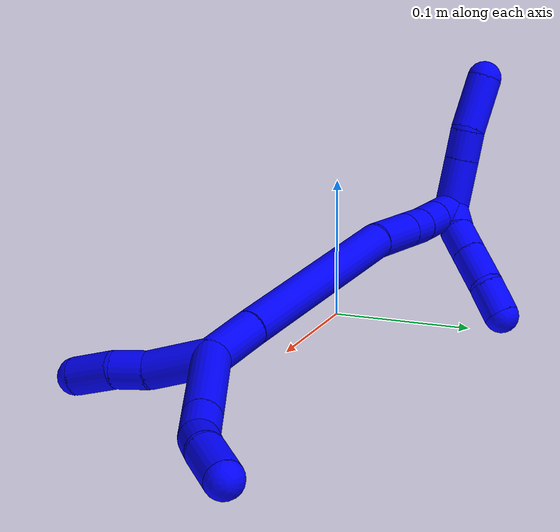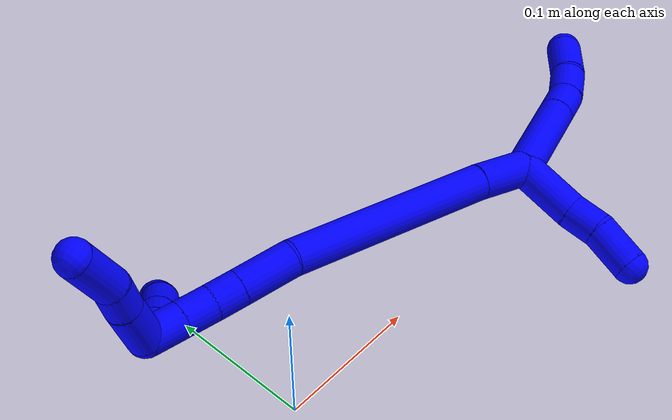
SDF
<sdf version="1.7">
 <world name="default">
  <model name="1">
   <static>0</static>
   <link name="1">
    <collision name="collision-cylinder-e_1_2_8">
     <pose>0.003365 0.011829 0.033653 -0.338014 0.094055 -0.016061</pose>
     <geometry><cylinder><radius>0.0125</radius><length>0.071661</length></cylinder></geometry>
     <surface>
      <friction><ode><mu>1.16</mu><mu2>1.16</mu2><slip1>0</slip1><slip2>0</slip2></ode></friction>
      <contact><ode><kp>1e+06</kp><kd>1</kd><max_vel>0</max_vel><min_depth>0.001</min_depth></ode></contact>
     </surface>
    </collision>
    <visual name="visual-cylinder-e_1_2_8">
     <pose>0.003365 0.011829 0.033653 -0.338014 0.094055 -0.016061</pose>
     <geometry><cylinder><radius>0.0125</radius><length>0.071661</length></cylinder></geometry>
     <material><ambient>0 0 1 1</ambient></material>
    </visual>
    <collision name="collision-cylinder-e_2_8_9">
     <pose>0.007819 0.027612 0.07856 -0.33788 0.091065 -0.015543</pose>
     <geometry><cylinder><radius>0.0125</radius><length>0.023954</length></cylinder></geometry>
     <surface>
      <friction><ode><mu>1.16</mu><mu2>1.16</mu2><slip1>0</slip1><slip2>0</slip2></ode></friction>
      <contact><ode><kp>1e+06</kp><kd>1</kd><max_vel>0</max_vel><min_depth>0.001</min_depth></ode></contact>
     </surface>
    </collision>
    <visual name="visual-cylinder-e_2_8_9">
     <pose>0.007819 0.027612 0.07856 -0.33788 0.091065 -0.015543</pose>
     <geometry><cylinder><radius>0.0125</radius><length>0.023954</length></cylinder></geometry>
     <material><ambient>0 0 1 1</ambient></material>
    </visual>
    <collision name="collision-cylinder-e_3_9_10">
     <pose>0.006326 0.03483 0.099982 -0.310576 -0.237222 0.037307</pose>
     <geometry><cylinder><radius>0.0125</radius><length>0.021975</length></cylinder></geometry>
     <surface>
      <friction><ode><mu>1.16</mu><mu2>1.16</mu2><slip1>0</slip1><slip2>0</slip2></ode></friction>
      <contact><ode><kp>1e+06</kp><kd>1</kd><max_vel>0</max_vel><min_depth>0.001</min_depth></ode></contact>
     </surface>
    </collision>
    <visual name="visual-cylinder-e_3_9_10">
     <pose>0.006326 0.03483 0.099982 -0.310576 -0.237222 0.037307</pose>
     <geometry><cylinder><radius>0.0125</radius><length>0.021975</length></cylinder></geometry>
     <material><ambient>0 0 1 1</ambient></material>
    </visual>
    <collision name="collision-cylinder-e_4_10_6">
     <pose>-0.00022 0.0464 0.123489 -0.55698 -0.247157 0.070999</pose>
     <geometry><cylinder><radius>0.0125</radius><length>0.03241</length></cylinder></geometry>
     <surface>
      <friction><ode><mu>1.16</mu><mu2>1.16</mu2><slip1>0</slip1><slip2>0</slip2></ode></friction>
      <contact><ode><kp>1e+06</kp><kd>1</kd><max_vel>0</max_vel><min_depth>0.001</min_depth></ode></contact>
     </surface>
    </collision>
    <visual name="visual-cylinder-e_4_10_6">
     <pose>-0.00022 0.0464 0.123489 -0.55698 -0.247157 0.070999</pose>
     <geometry><cylinder><radius>0.0125</radius><length>0.03241</length></cylinder></geometry>
     <material><ambient>0 0 1 1</ambient></material>
    </visual>
    <collision name="collision-cylinder-e_1_2_11">
     <pose>0.020463 -0.007019 -0.005024 2.19204 1.1716 1.82338</pose>
     <geometry><cylinder><radius>0.0125</radius><length>0.044418</length></cylinder></geometry>
     <surface>
      <friction><ode><mu>1.16</mu><mu2>1.16</mu2><slip1>0</slip1><slip2>0</slip2></ode></friction>
      <contact><ode><kp>1e+06</kp><kd>1</kd><max_vel>0</max_vel><min_depth>0.001</min_depth></ode></contact>
     </surface>
    </collision>
    <visual name="visual-cylinder-e_1_2_11">
     <pose>0.020463 -0.007019 -0.005024 2.19204 1.1716 1.82338</pose>
     <geometry><cylinder><radius>0.0125</radius><length>0.044418</length></cylinder></geometry>
     <material><ambient>0 0 1 1</ambient></material>
    </visual>
    <collision name="collision-cylinder-e_2_11_12">
     <pose>0.050826 -0.02006 -0.012391 1.94177 0.992629 1.33932</pose>
     <geometry><cylinder><radius>0.0125</radius><length>0.023645</length></cylinder></geometry>
     <surface>
      <friction><ode><mu>1.16</mu><mu2>1.16</mu2><slip1>0</slip1><slip2>0</slip2></ode></friction>
      <contact><ode><kp>1e+06</kp><kd>1</kd><max_vel>0</max_vel><min_depth>0.001</min_depth></ode></contact>
     </surface>
    </collision>
    <visual name="visual-cylinder-e_2_11_12">
     <pose>0.050826 -0.02006 -0.012391 1.94177 0.992629 1.33932</pose>
     <geometry><cylinder><radius>0.0125</radius><length>0.023645</length></cylinder></geometry>
     <material><ambient>0 0 1 1</ambient></material>
    </visual>
    <collision name="collision-cylinder-e_3_12_5">
     <pose>0.074709 -0.031135 -0.02056 2.42712 1.06668 2.01409</pose>
     <geometry><cylinder><radius>0.0125</radius><length>0.031938</length></cylinder></geometry>
     <surface>
      <friction><ode><mu>1.16</mu><mu2>1.16</mu2><slip1>0</slip1><slip2>0</slip2></ode></friction>
      <contact><ode><kp>1e+06</kp><kd>1</kd><max_vel>0</max_vel><min_depth>0.001</min_depth></ode></contact>
     </surface>
    </collision>
    <visual name="visual-cylinder-e_3_12_5">
     <pose>0.074709 -0.031135 -0.02056 2.42712 1.06668 2.01409</pose>
     <geometry><cylinder><radius>0.0125</radius><length>0.031938</length></cylinder></geometry>
     <material><ambient>0 0 1 1</ambient></material>
    </visual>
    <collision name="collision-cylinder-e_1_2_13">
     <pose>-0.011257 -0.000228 -0.016506 3.12779 -0.598518 -3.09687</pose>
     <geometry><cylinder><radius>0.0125</radius><length>0.039961</length></cylinder></geometry>
     <surface>
      <friction><ode><mu>1.16</mu><mu2>1.16</mu2><slip1>0</slip1><slip2>0</slip2></ode></friction>
      <contact><ode><kp>1e+06</kp><kd>1</kd><max_vel>0</max_vel><min_depth>0.001</min_depth></ode></contact>
     </surface>
    </collision>
    <visual name="visual-cylinder-e_1_2_13">
     <pose>-0.011257 -0.000228 -0.016506 3.12779 -0.598518 -3.09687</pose>
     <geometry><cylinder><radius>0.0125</radius><length>0.039961</length></cylinder></geometry>
     <material><ambient>0 0 1 1</ambient></material>
    </visual>
    <collision name="collision-cylinder-e_2_13_14">
     <pose>-0.061002 0.000345 -0.098603 -3.12939 -0.530601 3.09667</pose>
     <geometry><cylinder><radius>0.0125</radius><length>0.152107</length></cylinder></geometry>
     <surface>
      <friction><ode><mu>1.16</mu><mu2>1.16</mu2><slip1>0</slip1><slip2>0</slip2></ode></friction>
      <contact><ode><kp>1e+06</kp><kd>1</kd><max_vel>0</max_vel><min_depth>0.001</min_depth></ode></contact>
     </surface>
    </collision>
    <visual name="visual-cylinder-e_2_13_14">
     <pose>-0.061002 0.000345 -0.098603 -3.12939 -0.530601 3.09667</pose>
     <geometry><cylinder><radius>0.0125</radius><length>0.152107</length></cylinder></geometry>
     <material><ambient>0 0 1 1</ambient></material>
    </visual>
    <collision name="collision-cylinder-e_3_14_15">
     <pose>-0.107397 0.004405 -0.182123 -2.96179 -0.409466 2.32243</pose>
     <geometry><cylinder><radius>0.0125</radius><length>0.039729</length></cylinder></geometry>
     <surface>
      <friction><ode><mu>1.16</mu><mu2>1.16</mu2><slip1>0</slip1><slip2>0</slip2></ode></friction>
      <contact><ode><kp>1e+06</kp><kd>1</kd><max_vel>0</max_vel><min_depth>0.001</min_depth></ode></contact>
     </surface>
    </collision>
    <visual name="visual-cylinder-e_3_14_15">
     <pose>-0.107397 0.004405 -0.182123 -2.96179 -0.409466 2.32243</pose>
     <geometry><cylinder><radius>0.0125</radius><length>0.039729</length></cylinder></geometry>
     <material><ambient>0 0 1 1</ambient></material>
    </visual>
    <collision name="collision-cylinder-e_4_15_16">
     <pose>-0.119459 0.009373 -0.209297 -2.95879 -0.415932 2.32206</pose>
     <geometry><cylinder><radius>0.0125</radius><length>0.020557</length></cylinder></geometry>
     <surface>
      <friction><ode><mu>1.16</mu><mu2>1.16</mu2><slip1>0</slip1><slip2>0</slip2></ode></friction>
      <contact><ode><kp>1e+06</kp><kd>1</kd><max_vel>0</max_vel><min_depth>0.001</min_depth></ode></contact>
     </surface>
    </collision>
    <visual name="visual-cylinder-e_4_15_16">
     <pose>-0.119459 0.009373 -0.209297 -2.95879 -0.415932 2.32206</pose>
     <geometry><cylinder><radius>0.0125</radius><length>0.020557</length></cylinder></geometry>
     <material><ambient>0 0 1 1</ambient></material>
    </visual>
    <collision name="collision-cylinder-e_5_16_17">
     <pose>-0.128344 0.012133 -0.228705 -3.03851 -0.433825 2.68173</pose>
     <geometry><cylinder><radius>0.0125</radius><length>0.022518</length></cylinder></geometry>
     <surface>
      <friction><ode><mu>1.16</mu><mu2>1.16</mu2><slip1>0</slip1><slip2>0</slip2></ode></friction>
      <contact><ode><kp>1e+06</kp><kd>1</kd><max_vel>0</max_vel><min_depth>0.001</min_depth></ode></contact>
     </surface>
    </collision>
    <visual name="visual-cylinder-e_5_16_17">
     <pose>-0.128344 0.012133 -0.228705 -3.03851 -0.433825 2.68173</pose>
     <geometry><cylinder><radius>0.0125</radius><length>0.022518</length></cylinder></geometry>
     <material><ambient>0 0 1 1</ambient></material>
    </visual>
    <collision name="collision-cylinder-e_6_17_1">
     <pose>-0.138408 0.014227 -0.250196 -3.04982 -0.438218 2.73486</pose>
     <geometry><cylinder><radius>0.0125</radius><length>0.025127</length></cylinder></geometry>
     <surface>
      <friction><ode><mu>1.16</mu><mu2>1.16</mu2><slip1>0</slip1><slip2>0</slip2></ode></friction>
      <contact><ode><kp>1e+06</kp><kd>1</kd><max_vel>0</max_vel><min_depth>0.001</min_depth></ode></contact>
     </surface>
    </collision>
    <visual name="visual-cylinder-e_6_17_1">
     <pose>-0.138408 0.014227 -0.250196 -3.04982 -0.438218 2.73486</pose>
     <geometry><cylinder><radius>0.0125</radius><length>0.025127</length></cylinder></geometry>
     <material><ambient>0 0 1 1</ambient></material>
    </visual>
    <collision name="collision-cylinder-e_1_1_18">
     <pose>-0.156903 0.002189 -0.263067 1.68823 -0.785128 -0.871791</pose>
     <geometry><cylinder><radius>0.0125</radius><length>0.037243</length></cylinder></geometry>
     <surface>
      <friction><ode><mu>1.16</mu><mu2>1.16</mu2><slip1>0</slip1><slip2>0</slip2></ode></friction>
      <contact><ode><kp>1e+06</kp><kd>1</kd><max_vel>0</max_vel><min_depth>0.001</min_depth></ode></contact>
     </surface>
    </collision>
    <visual name="visual-cylinder-e_1_1_18">
     <pose>-0.156903 0.002189 -0.263067 1.68823 -0.785128 -0.871791</pose>
     <geometry><cylinder><radius>0.0125</radius><length>0.037243</length></cylinder></geometry>
     <material><ambient>0 0 1 1</ambient></material>
    </visual>
    <collision name="collision-cylinder-e_2_18_19">
     <pose>-0.177873 -0.018659 -0.264742 1.58774 -0.787768 -0.799851</pose>
     <geometry><cylinder><radius>0.0125</radius><length>0.022025</length></cylinder></geometry>
     <surface>
      <friction><ode><mu>1.16</mu><mu2>1.16</mu2><slip1>0</slip1><slip2>0</slip2></ode></friction>
      <contact><ode><kp>1e+06</kp><kd>1</kd><max_vel>0</max_vel><min_depth>0.001</min_depth></ode></contact>
     </surface>
    </collision>
    <visual name="visual-cylinder-e_2_18_19">
     <pose>-0.177873 -0.018659 -0.264742 1.58774 -0.787768 -0.799851</pose>
     <geometry><cylinder><radius>0.0125</radius><length>0.022025</length></cylinder></geometry>
     <material><ambient>0 0 1 1</ambient></material>
    </visual>
    <collision name="collision-cylinder-e_3_19_4">
     <pose>-0.200799 -0.039005 -0.270158 1.96851 -0.836702 -1.17925</pose>
     <geometry><cylinder><radius>0.0125</radius><length>0.040732</length></cylinder></geometry>
     <surface>
      <friction><ode><mu>1.16</mu><mu2>1.16</mu2><slip1>0</slip1><slip2>0</slip2></ode></friction>
      <contact><ode><kp>1e+06</kp><kd>1</kd><max_vel>0</max_vel><min_depth>0.001</min_depth></ode></contact>
     </surface>
    </collision>
    <visual name="visual-cylinder-e_3_19_4">
     <pose>-0.200799 -0.039005 -0.270158 1.96851 -0.836702 -1.17925</pose>
     <geometry><cylinder><radius>0.0125</radius><length>0.040732</length></cylinder></geometry>
     <material><ambient>0 0 1 1</ambient></material>
    </visual>
    <collision name="collision-cylinder-e_1_1_20">
     <pose>-0.142122 0.022889 -0.253479 -0.758218 0.144955 -0.057833</pose>
     <geometry><cylinder><radius>0.0125</radius><length>0.022397</length></cylinder></geometry>
     <surface>
      <friction><ode><mu>1.16</mu><mu2>1.16</mu2><slip1>0</slip1><slip2>0</slip2></ode></friction>
      <contact><ode><kp>1e+06</kp><kd>1</kd><max_vel>0</max_vel><min_depth>0.001</min_depth></ode></contact>
     </surface>
    </collision>
    <visual name="visual-cylinder-e_1_1_20">
     <pose>-0.142122 0.022889 -0.253479 -0.758218 0.144955 -0.057833</pose>
     <geometry><cylinder><radius>0.0125</radius><length>0.022397</length></cylinder></geometry>
     <material><ambient>0 0 1 1</ambient></material>
    </visual>
    <collision name="collision-cylinder-e_2_20_21">
     <pose>-0.140434 0.039611 -0.238547 -0.923122 0.006128 -0.003048</pose>
     <geometry><cylinder><radius>0.0125</radius><length>0.022829</length></cylinder></geometry>
     <surface>
      <friction><ode><mu>1.16</mu><mu2>1.16</mu2><slip1>0</slip1><slip2>0</slip2></ode></friction>
      <contact><ode><kp>1e+06</kp><kd>1</kd><max_vel>0</max_vel><min_depth>0.001</min_depth></ode></contact>
     </surface>
    </collision>
    <visual name="visual-cylinder-e_2_20_21">
     <pose>-0.140434 0.039611 -0.238547 -0.923122 0.006128 -0.003048</pose>
     <geometry><cylinder><radius>0.0125</radius><length>0.022829</length></cylinder></geometry>
     <material><ambient>0 0 1 1</ambient></material>
    </visual>
    <collision name="collision-cylinder-e_3_21_22">
     <pose>-0.140328 0.060628 -0.222751 -0.928718 0.002473 -0.001239</pose>
     <geometry><cylinder><radius>0.0125</radius><length>0.029754</length></cylinder></geometry>
     <surface>
      <friction><ode><mu>1.16</mu><mu2>1.16</mu2><slip1>0</slip1><slip2>0</slip2></ode></friction>
      <contact><ode><kp>1e+06</kp><kd>1</kd><max_vel>0</max_vel><min_depth>0.001</min_depth></ode></contact>
     </surface>
    </collision>
    <visual name="visual-cylinder-e_3_21_22">
     <pose>-0.140328 0.060628 -0.222751 -0.928718 0.002473 -0.001239</pose>
     <geometry><cylinder><radius>0.0125</radius><length>0.029754</length></cylinder></geometry>
     <material><ambient>0 0 1 1</ambient></material>
    </visual>
    <collision name="collision-cylinder-e_4_22_3">
     <pose>-0.139424 0.084162 -0.209288 -1.19727 0.069347 -0.047314</pose>
     <geometry><cylinder><radius>0.0125</radius><length>0.025021</length></cylinder></geometry>
     <surface>
      <friction><ode><mu>1.16</mu><mu2>1.16</mu2><slip1>0</slip1><slip2>0</slip2></ode></friction>
      <contact><ode><kp>1e+06</kp><kd>1</kd><max_vel>0</max_vel><min_depth>0.001</min_depth></ode></contact>
     </surface>
    </collision>
    <visual name="visual-cylinder-e_4_22_3">
     <pose>-0.139424 0.084162 -0.209288 -1.19727 0.069347 -0.047314</pose>
     <geometry><cylinder><radius>0.0125</radius><length>0.025021</length></cylinder></geometry>
     <material><ambient>0 0 1 1</ambient></material>
    </visual>
    <collision name="collision-sphere-3">
     <pose>-0.138557 0.095782 -0.204734 0 -0 0</pose>
     <geometry><sphere><radius>0.0125</radius></sphere></geometry>
     <surface>
      <friction><ode><mu>1.16</mu><mu2>1.16</mu2><slip1>0</slip1><slip2>0</slip2></ode></friction>
      <contact><ode><kp>1e+06</kp><kd>1</kd><max_vel>0</max_vel><min_depth>0.001</min_depth></ode></contact>
     </surface>
    </collision>
    <visual name="visual-sphere-3">
     <pose>-0.138557 0.095782 -0.204734 0 -0 0</pose>
     <geometry><sphere><radius>0.0125</radius></sphere></geometry>
     <material><ambient>0 0 1 1</ambient></material>
    </visual>
    <collision name="collision-sphere-22">
     <pose>-0.140291 0.072542 -0.213842 0 -0 0</pose>
     <geometry><sphere><radius>0.0125</radius></sphere></geometry>
     <surface>
      <friction><ode><mu>1.16</mu><mu2>1.16</mu2><slip1>0</slip1><slip2>0</slip2></ode></friction>
      <contact><ode><kp>1e+06</kp><kd>1</kd><max_vel>0</max_vel><min_depth>0.001</min_depth></ode></contact>
     </surface>
    </collision>
    <visual name="visual-sphere-22">
     <pose>-0.140291 0.072542 -0.213842 0 -0 0</pose>
     <geometry><sphere><radius>0.0125</radius></sphere></geometry>
     <material><ambient>0 0 1 1</ambient></material>
    </visual>
    <collision name="collision-sphere-21">
     <pose>-0.140364 0.048714 -0.23166 0 -0 0</pose>
     <geometry><sphere><radius>0.0125</radius></sphere></geometry>
     <surface>
      <friction><ode><mu>1.16</mu><mu2>1.16</mu2><slip1>0</slip1><slip2>0</slip2></ode></friction>
      <contact><ode><kp>1e+06</kp><kd>1</kd><max_vel>0</max_vel><min_depth>0.001</min_depth></ode></contact>
     </surface>
    </collision>
    <visual name="visual-sphere-21">
     <pose>-0.140364 0.048714 -0.23166 0 -0 0</pose>
     <geometry><sphere><radius>0.0125</radius></sphere></geometry>
     <material><ambient>0 0 1 1</ambient></material>
    </visual>
    <collision name="collision-sphere-20">
     <pose>-0.140504 0.030508 -0.245433 0 -0 0</pose>
     <geometry><sphere><radius>0.0125</radius></sphere></geometry>
     <surface>
      <friction><ode><mu>1.16</mu><mu2>1.16</mu2><slip1>0</slip1><slip2>0</slip2></ode></friction>
      <contact><ode><kp>1e+06</kp><kd>1</kd><max_vel>0</max_vel><min_depth>0.001</min_depth></ode></contact>
     </surface>
    </collision>
    <visual name="visual-sphere-20">
     <pose>-0.140504 0.030508 -0.245433 0 -0 0</pose>
     <geometry><sphere><radius>0.0125</radius></sphere></geometry>
     <material><ambient>0 0 1 1</ambient></material>
    </visual>
    <collision name="collision-sphere-4">
     <pose>-0.215919 -0.051583 -0.275442 0 -0 0</pose>
     <geometry><sphere><radius>0.0125</radius></sphere></geometry>
     <surface>
      <friction><ode><mu>1.16</mu><mu2>1.16</mu2><slip1>0</slip1><slip2>0</slip2></ode></friction>
      <contact><ode><kp>1e+06</kp><kd>1</kd><max_vel>0</max_vel><min_depth>0.001</min_depth></ode></contact>
     </surface>
    </collision>
    <visual name="visual-sphere-4">
     <pose>-0.215919 -0.051583 -0.275442 0 -0 0</pose>
     <geometry><sphere><radius>0.0125</radius></sphere></geometry>
     <material><ambient>0 0 1 1</ambient></material>
    </visual>
    <collision name="collision-sphere-11">
     <pose>0.040925 -0.014038 -0.010049 0 -0 0</pose>
     <geometry><sphere><radius>0.0125</radius></sphere></geometry>
     <surface>
      <friction><ode><mu>1.16</mu><mu2>1.16</mu2><slip1>0</slip1><slip2>0</slip2></ode></friction>
      <contact><ode><kp>1e+06</kp><kd>1</kd><max_vel>0</max_vel><min_depth>0.001</min_depth></ode></contact>
     </surface>
    </collision>
    <visual name="visual-sphere-11">
     <pose>0.040925 -0.014038 -0.010049 0 -0 0</pose>
     <geometry><sphere><radius>0.0125</radius></sphere></geometry>
     <material><ambient>0 0 1 1</ambient></material>
    </visual>
    <collision name="collision-sphere-6">
     <pose>-0.004185 0.054706 0.136826 0 -0 0</pose>
     <geometry><sphere><radius>0.0125</radius></sphere></geometry>
     <surface>
      <friction><ode><mu>1.16</mu><mu2>1.16</mu2><slip1>0</slip1><slip2>0</slip2></ode></friction>
      <contact><ode><kp>1e+06</kp><kd>1</kd><max_vel>0</max_vel><min_depth>0.001</min_depth></ode></contact>
     </surface>
    </collision>
    <visual name="visual-sphere-6">
     <pose>-0.004185 0.054706 0.136826 0 -0 0</pose>
     <geometry><sphere><radius>0.0125</radius></sphere></geometry>
     <material><ambient>0 0 1 1</ambient></material>
    </visual>
    <collision name="collision-sphere-10">
     <pose>0.003744 0.038094 0.110151 0 -0 0</pose>
     <geometry><sphere><radius>0.0125</radius></sphere></geometry>
     <surface>
      <friction><ode><mu>1.16</mu><mu2>1.16</mu2><slip1>0</slip1><slip2>0</slip2></ode></friction>
      <contact><ode><kp>1e+06</kp><kd>1</kd><max_vel>0</max_vel><min_depth>0.001</min_depth></ode></contact>
     </surface>
    </collision>
    <visual name="visual-sphere-10">
     <pose>0.003744 0.038094 0.110151 0 -0 0</pose>
     <geometry><sphere><radius>0.0125</radius></sphere></geometry>
     <material><ambient>0 0 1 1</ambient></material>
    </visual>
    <collision name="collision-sphere-9">
     <pose>0.008908 0.031566 0.089813 0 -0 0</pose>
     <geometry><sphere><radius>0.0125</radius></sphere></geometry>
     <surface>
      <friction><ode><mu>1.16</mu><mu2>1.16</mu2><slip1>0</slip1><slip2>0</slip2></ode></friction>
      <contact><ode><kp>1e+06</kp><kd>1</kd><max_vel>0</max_vel><min_depth>0.001</min_depth></ode></contact>
     </surface>
    </collision>
    <visual name="visual-sphere-9">
     <pose>0.008908 0.031566 0.089813 0 -0 0</pose>
     <geometry><sphere><radius>0.0125</radius></sphere></geometry>
     <material><ambient>0 0 1 1</ambient></material>
    </visual>
    <collision name="collision-sphere-2">
     <geometry><sphere><radius>0.0125</radius></sphere></geometry>
     <surface>
      <friction><ode><mu>1.16</mu><mu2>1.16</mu2><slip1>0</slip1><slip2>0</slip2></ode></friction>
      <contact><ode><kp>1e+06</kp><kd>1</kd><max_vel>0</max_vel><min_depth>0.001</min_depth></ode></contact>
     </surface>
    </collision>
    <visual name="visual-sphere-2">
     <geometry><sphere><radius>0.0125</radius></sphere></geometry>
     <material><ambient>0 0 1 1</ambient></material>
    </visual>
    <collision name="collision-sphere-19">
     <pose>-0.185678 -0.026426 -0.264874 0 -0 0</pose>
     <geometry><sphere><radius>0.0125</radius></sphere></geometry>
     <surface>
      <friction><ode><mu>1.16</mu><mu2>1.16</mu2><slip1>0</slip1><slip2>0</slip2></ode></friction>
      <contact><ode><kp>1e+06</kp><kd>1</kd><max_vel>0</max_vel><min_depth>0.001</min_depth></ode></contact>
     </surface>
    </collision>
    <visual name="visual-sphere-19">
     <pose>-0.185678 -0.026426 -0.264874 0 -0 0</pose>
     <geometry><sphere><radius>0.0125</radius></sphere></geometry>
     <material><ambient>0 0 1 1</ambient></material>
    </visual>
    <collision name="collision-sphere-8">
     <pose>0.00673 0.023659 0.067307 0 -0 0</pose>
     <geometry><sphere><radius>0.0125</radius></sphere></geometry>
     <surface>
      <friction><ode><mu>1.16</mu><mu2>1.16</mu2><slip1>0</slip1><slip2>0</slip2></ode></friction>
      <contact><ode><kp>1e+06</kp><kd>1</kd><max_vel>0</max_vel><min_depth>0.001</min_depth></ode></contact>
     </surface>
    </collision>
    <visual name="visual-sphere-8">
     <pose>0.00673 0.023659 0.067307 0 -0 0</pose>
     <geometry><sphere><radius>0.0125</radius></sphere></geometry>
     <material><ambient>0 0 1 1</ambient></material>
    </visual>
    <collision name="collision-sphere-12">
     <pose>0.060727 -0.026081 -0.014733 0 -0 0</pose>
     <geometry><sphere><radius>0.0125</radius></sphere></geometry>
     <surface>
      <friction><ode><mu>1.16</mu><mu2>1.16</mu2><slip1>0</slip1><slip2>0</slip2></ode></friction>
      <contact><ode><kp>1e+06</kp><kd>1</kd><max_vel>0</max_vel><min_depth>0.001</min_depth></ode></contact>
     </surface>
    </collision>
    <visual name="visual-sphere-12">
     <pose>0.060727 -0.026081 -0.014733 0 -0 0</pose>
     <geometry><sphere><radius>0.0125</radius></sphere></geometry>
     <material><ambient>0 0 1 1</ambient></material>
    </visual>
    <collision name="collision-sphere-5">
     <pose>0.088691 -0.036189 -0.026387 0 -0 0</pose>
     <geometry><sphere><radius>0.0125</radius></sphere></geometry>
     <surface>
      <friction><ode><mu>1.16</mu><mu2>1.16</mu2><slip1>0</slip1><slip2>0</slip2></ode></friction>
      <contact><ode><kp>1e+06</kp><kd>1</kd><max_vel>0</max_vel><min_depth>0.001</min_depth></ode></contact>
     </surface>
    </collision>
    <visual name="visual-sphere-5">
     <pose>0.088691 -0.036189 -0.026387 0 -0 0</pose>
     <geometry><sphere><radius>0.0125</radius></sphere></geometry>
     <material><ambient>0 0 1 1</ambient></material>
    </visual>
    <collision name="collision-sphere-13">
     <pose>-0.022515 -0.000456 -0.033012 0 -0 0</pose>
     <geometry><sphere><radius>0.0125</radius></sphere></geometry>
     <surface>
      <friction><ode><mu>1.16</mu><mu2>1.16</mu2><slip1>0</slip1><slip2>0</slip2></ode></friction>
      <contact><ode><kp>1e+06</kp><kd>1</kd><max_vel>0</max_vel><min_depth>0.001</min_depth></ode></contact>
     </surface>
    </collision>
    <visual name="visual-sphere-13">
     <pose>-0.022515 -0.000456 -0.033012 0 -0 0</pose>
     <geometry><sphere><radius>0.0125</radius></sphere></geometry>
     <material><ambient>0 0 1 1</ambient></material>
    </visual>
    <collision name="collision-sphere-14">
     <pose>-0.099489 0.001146 -0.164194 0 -0 0</pose>
     <geometry><sphere><radius>0.0125</radius></sphere></geometry>
     <surface>
      <friction><ode><mu>1.16</mu><mu2>1.16</mu2><slip1>0</slip1><slip2>0</slip2></ode></friction>
      <contact><ode><kp>1e+06</kp><kd>1</kd><max_vel>0</max_vel><min_depth>0.001</min_depth></ode></contact>
     </surface>
    </collision>
    <visual name="visual-sphere-14">
     <pose>-0.099489 0.001146 -0.164194 0 -0 0</pose>
     <geometry><sphere><radius>0.0125</radius></sphere></geometry>
     <material><ambient>0 0 1 1</ambient></material>
    </visual>
    <collision name="collision-sphere-15">
     <pose>-0.115306 0.007663 -0.200052 0 -0 0</pose>
     <geometry><sphere><radius>0.0125</radius></sphere></geometry>
     <surface>
      <friction><ode><mu>1.16</mu><mu2>1.16</mu2><slip1>0</slip1><slip2>0</slip2></ode></friction>
      <contact><ode><kp>1e+06</kp><kd>1</kd><max_vel>0</max_vel><min_depth>0.001</min_depth></ode></contact>
     </surface>
    </collision>
    <visual name="visual-sphere-15">
     <pose>-0.115306 0.007663 -0.200052 0 -0 0</pose>
     <geometry><sphere><radius>0.0125</radius></sphere></geometry>
     <material><ambient>0 0 1 1</ambient></material>
    </visual>
    <collision name="collision-sphere-16">
     <pose>-0.123612 0.011082 -0.218543 0 -0 0</pose>
     <geometry><sphere><radius>0.0125</radius></sphere></geometry>
     <surface>
      <friction><ode><mu>1.16</mu><mu2>1.16</mu2><slip1>0</slip1><slip2>0</slip2></ode></friction>
      <contact><ode><kp>1e+06</kp><kd>1</kd><max_vel>0</max_vel><min_depth>0.001</min_depth></ode></contact>
     </surface>
    </collision>
    <visual name="visual-sphere-16">
     <pose>-0.123612 0.011082 -0.218543 0 -0 0</pose>
     <geometry><sphere><radius>0.0125</radius></sphere></geometry>
     <material><ambient>0 0 1 1</ambient></material>
    </visual>
    <collision name="collision-sphere-17">
     <pose>-0.133077 0.013184 -0.238867 0 -0 0</pose>
     <geometry><sphere><radius>0.0125</radius></sphere></geometry>
     <surface>
      <friction><ode><mu>1.16</mu><mu2>1.16</mu2><slip1>0</slip1><slip2>0</slip2></ode></friction>
      <contact><ode><kp>1e+06</kp><kd>1</kd><max_vel>0</max_vel><min_depth>0.001</min_depth></ode></contact>
     </surface>
    </collision>
    <visual name="visual-sphere-17">
     <pose>-0.133077 0.013184 -0.238867 0 -0 0</pose>
     <geometry><sphere><radius>0.0125</radius></sphere></geometry>
     <material><ambient>0 0 1 1</ambient></material>
    </visual>
    <collision name="collision-sphere-1">
     <pose>-0.143739 0.01527 -0.261524 0 -0 0</pose>
     <geometry><sphere><radius>0.0125</radius></sphere></geometry>
     <surface>
      <friction><ode><mu>1.16</mu><mu2>1.16</mu2><slip1>0</slip1><slip2>0</slip2></ode></friction>
      <contact><ode><kp>1e+06</kp><kd>1</kd><max_vel>0</max_vel><min_depth>0.001</min_depth></ode></contact>
     </surface>
    </collision>
    <visual name="visual-sphere-1">
     <pose>-0.143739 0.01527 -0.261524 0 -0 0</pose>
     <geometry><sphere><radius>0.0125</radius></sphere></geometry>
     <material><ambient>0 0 1 1</ambient></material>
    </visual>
    <collision name="collision-sphere-18">
     <pose>-0.170067 -0.010891 -0.264611 0 -0 0</pose>
     <geometry><sphere><radius>0.0125</radius></sphere></geometry>
     <surface>
      <friction><ode><mu>1.16</mu><mu2>1.16</mu2><slip1>0</slip1><slip2>0</slip2></ode></friction>
      <contact><ode><kp>1e+06</kp><kd>1</kd><max_vel>0</max_vel><min_depth>0.001</min_depth></ode></contact>
     </surface>
    </collision>
    <visual name="visual-sphere-18">
     <pose>-0.170067 -0.010891 -0.264611 0 -0 0</pose>
     <geometry><sphere><radius>0.0125</radius></sphere></geometry>
     <material><ambient>0 0 1 1</ambient></material>
    </visual>
    <inertial>
     <pose>-0.06634 0.008598 -0.105243 0 -0 0</pose>
     <mass>0.75</mass>
     <inertia>
      <ixx>-0.000212</ixx>
      <ixy>0</ixy>
      <ixz>0</ixz>
      <iyy>0.000399</iyy>
      <iyz>0</iyz>
      <izz>0.000135</izz>
     </inertia>
    </inertial>
   </link>
   <pose>0.23283 0.00317 0.036109 -1.41551 0.607424 -1.26375</pose>
  </model>
 </world>
</sdf>
